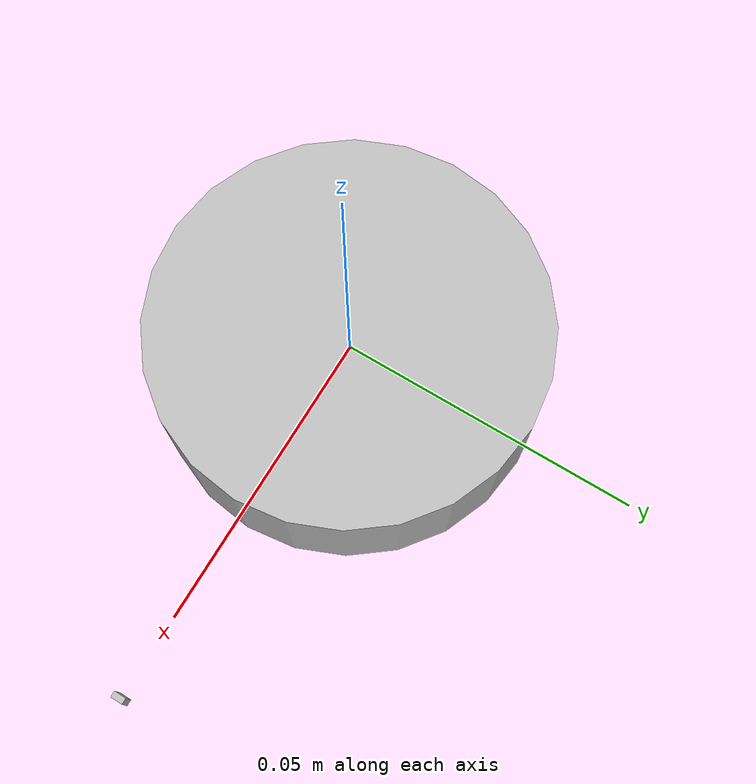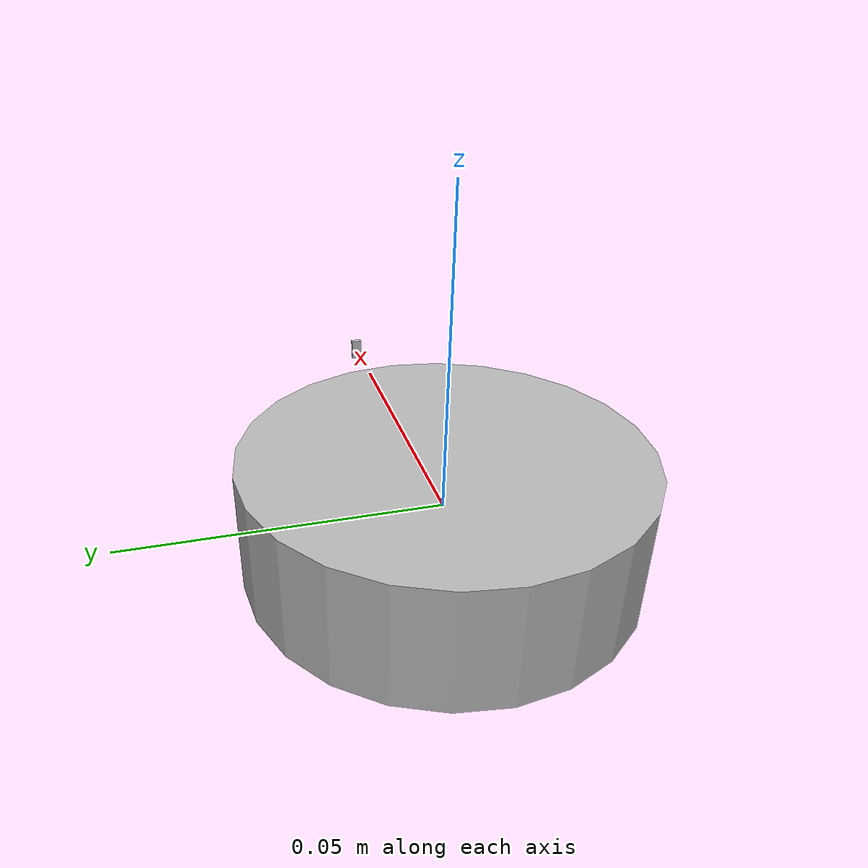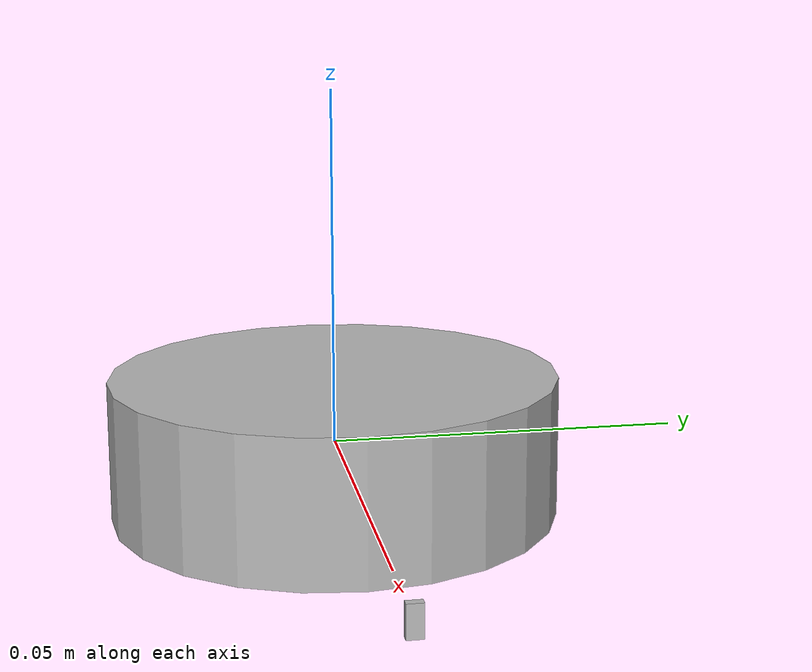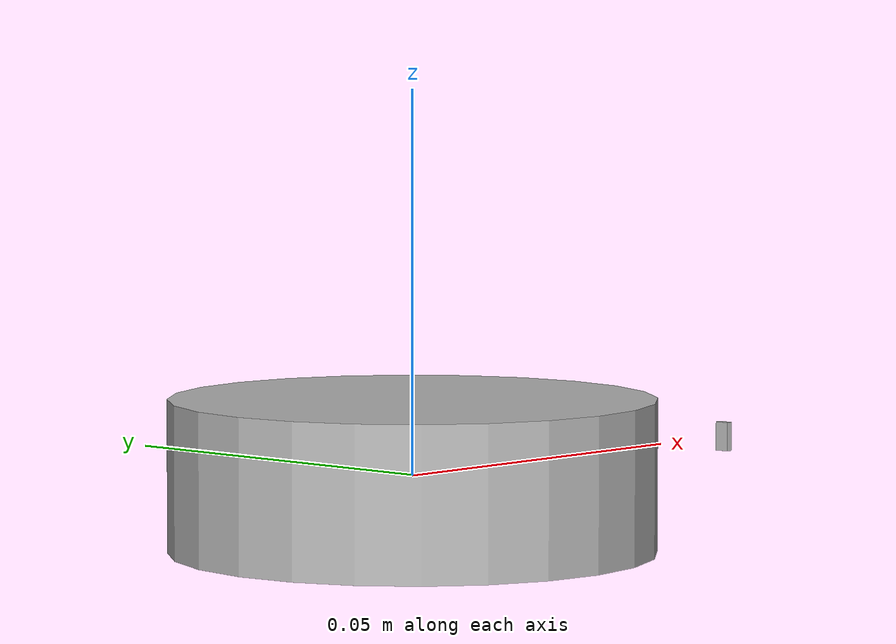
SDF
<sdf version='1.7'>
  <model name='dlidar_gazebo'>
    <link name='dlidar_base'>
      <inertial>
        <pose>0.015892 0 0 0 -0 0</pose>
        <mass>12</mass>
        <inertia>
          <ixx>2</ixx>
          <ixy>0</ixy>
          <ixz>0</ixz>
          <iyy>2.00303</iyy>
          <iyz>0</iyz>
          <izz>2.00303</izz>
        </inertia>
      </inertial>
      <collision name='dlidar_base_collision'>
        <pose>0 0 0 0 -0 0</pose>
        <geometry>
          <cylinder>
            <length>0.02</length>
            <radius>0.031783</radius>
          </cylinder>
        </geometry>
      </collision>
      <collision name='dlidar_base_fixed_joint_lump__dlidar0_collision_1'>
        <pose>0.063566 0 0 0 -0 0</pose>
        <geometry>
          <box>
            <size>0.001 0.002 0.004</size>
          </box>
        </geometry>
      </collision>
      <visual name='dlidar_base_visual'>
        <pose>0 0 0 0 -0 0</pose>
        <geometry>
          <cylinder>
            <length>0.02</length>
            <radius>0.031783</radius>
          </cylinder>
        </geometry>
      </visual>
      <visual name='dlidar_base_fixed_joint_lump__dlidar0_visual_1'>
        <pose>0.063566 0 0 0 -0 0</pose>
        <geometry>
          <box>
            <size>0.001 0.002 0.004</size>
          </box>
        </geometry>
      </visual>
    </link>
  </model>
</sdf>
